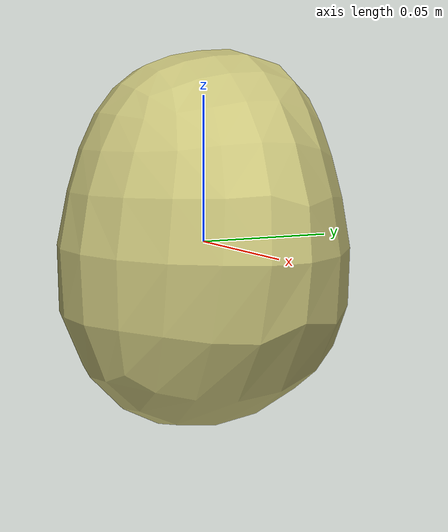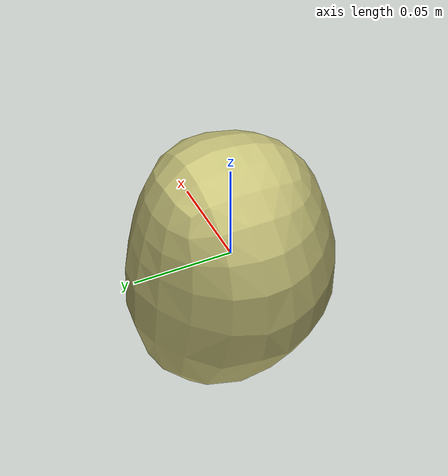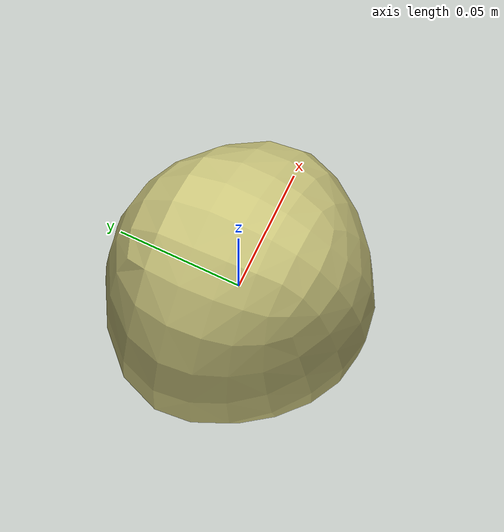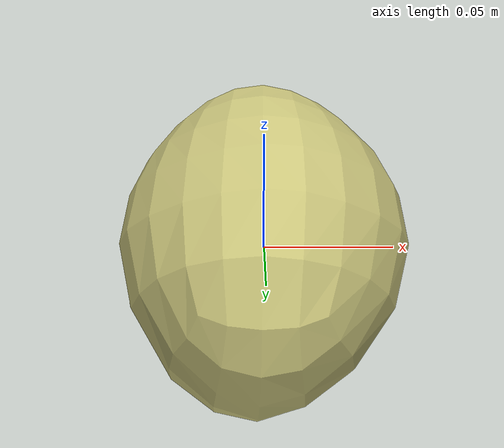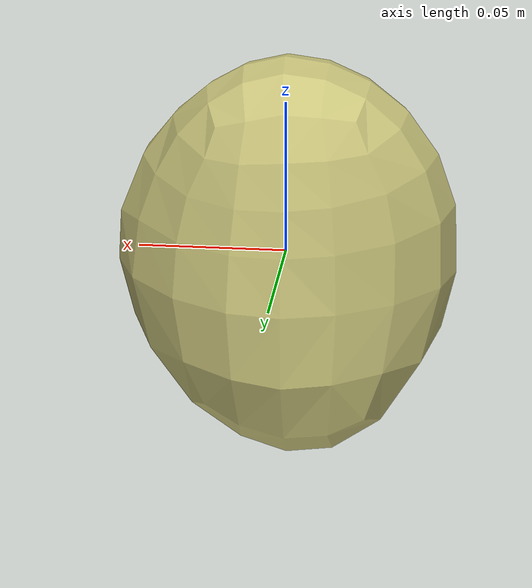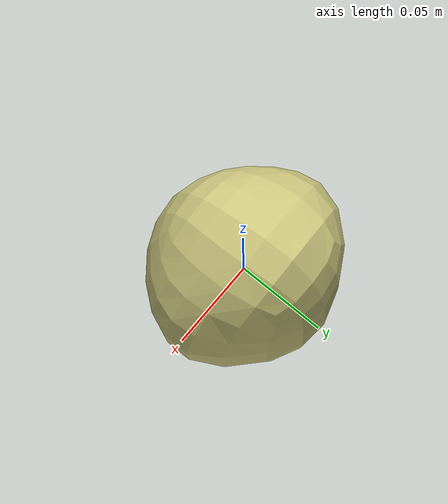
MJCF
<mujoco model="Potato_29">
  <default>
    <default class="visual">
      <geom group="2" type="mesh" contype="0" conaffinity="0"/>
    </default>
    <default class="collision">
      <geom group="3" type="mesh"/>
    </default>
  </default>
  <asset>
    <material name="Potato3_Mat4" specular="0.5" shininess="0.5" rgba="0.7794118 0.7584641 0.4756704 1.0"/>
    <mesh file="Potato_29.obj"/>
    <mesh file="Potato_29_collision_0.obj"/>
  </asset>
  <worldbody>
    <body name="Potato_29">
      <geom material="Potato3_Mat4" mesh="Potato_29" class="visual"/>
      <geom mesh="Potato_29_collision_0" rgba="0.6131468319052958 0.35906131297695454 0.9659436073551592 1" class="collision"/>
    </body>
  </worldbody>
</mujoco>
